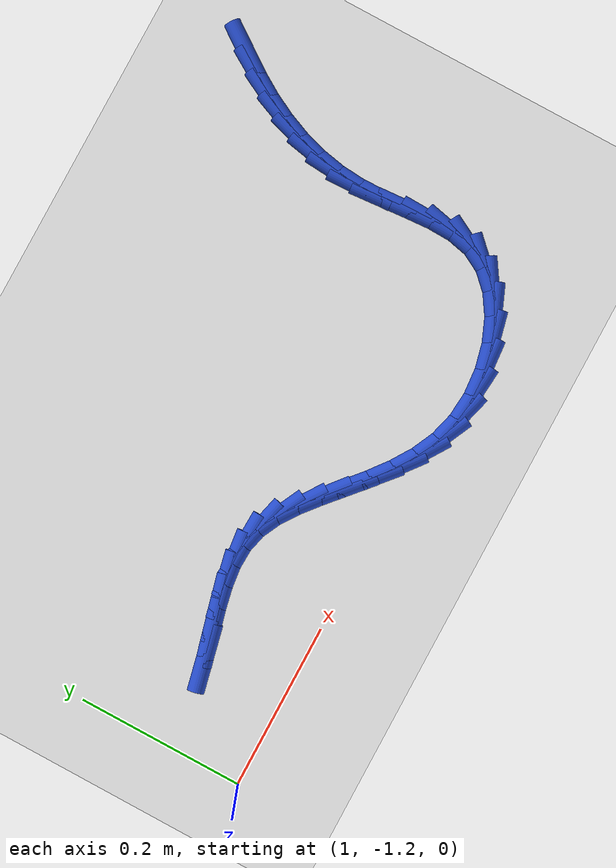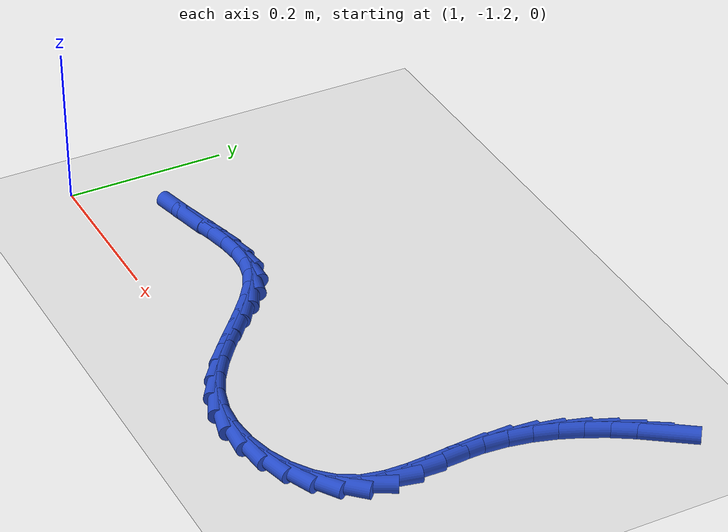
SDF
<sdf version="1.6">
 <world name="default">
  <model name="ground_plane">
   <static>1</static>
   <link name="link">
    <collision name="collision">
     <geometry><plane><normal>0 0 1</normal><size>100 100</size></plane></geometry>
     <surface><friction><ode><mu>100</mu><mu2>50</mu2></ode></friction></surface>
    </collision>
    <visual name="visual">
     <cast_shadows>0</cast_shadows>
     <geometry><plane><normal>0 0 1</normal><size>100 100</size></plane></geometry>
     <material>
      <script><uri>file://media/materials/scripts/gazebo.material</uri><name>Gazebo/WhiteGlow</name></script>
     </material>
    </visual>
   </link>
  </model>
  <model name="line">
   <link name="link_178">
    <pose>1.7388450978351795 -0.811253613014674 0.01 0 1.57 0.9492662769363623</pose>
    <collision name="collision">
     <geometry><cylinder><radius>0.01</radius><length>0.08</length></cylinder></geometry>
    </collision>
    <visual name="visual">
     <material>
      <script><name>Gazebo/Blue</name><uri>file://media/materials/scripts/gazebo.material</uri></script>
     </material>
     <geometry><cylinder><radius>0.01</radius><length>0.08</length></cylinder></geometry>
    </visual>
   </link>
   <link name="link_179">
    <pose>1.7215898680062645 -0.8353456463728262 0.01 0 1.57 1.0168966036760607</pose>
    <collision name="collision">
     <geometry><cylinder><radius>0.01</radius><length>0.08</length></cylinder></geometry>
    </collision>
    <visual name="visual">
     <material>
      <script><name>Gazebo/Blue</name><uri>file://media/materials/scripts/gazebo.material</uri></script>
     </material>
     <geometry><cylinder><radius>0.01</radius><length>0.08</length></cylinder></geometry>
    </visual>
   </link>
   <link name="link_180">
    <pose>1.706130677606069 -0.860340953222274 0.01 0 1.57 1.0935632511384987</pose>
    <collision name="collision">
     <geometry><cylinder><radius>0.01</radius><length>0.08</length></cylinder></geometry>
    </collision>
    <visual name="visual">
     <material>
      <script><name>Gazebo/Blue</name><uri>file://media/materials/scripts/gazebo.material</uri></script>
     </material>
     <geometry><cylinder><radius>0.01</radius><length>0.08</length></cylinder></geometry>
    </visual>
   </link>
   <link name="link_181">
    <pose>1.69274324322979 -0.8862304511399953 0.01 0 1.57 1.1797064117373068</pose>
    <collision name="collision">
     <geometry><cylinder><radius>0.01</radius><length>0.08</length></cylinder></geometry>
    </collision>
    <visual name="visual">
     <material>
      <script><name>Gazebo/Blue</name><uri>file://media/materials/scripts/gazebo.material</uri></script>
     </material>
     <geometry><cylinder><radius>0.01</radius><length>0.08</length></cylinder></geometry>
    </visual>
   </link>
   <link name="link_182">
    <pose>1.6817032814726256 -0.9130050577029654 0.01 0 1.57 1.2753103899206568</pose>
    <collision name="collision">
     <geometry><cylinder><radius>0.01</radius><length>0.08</length></cylinder></geometry>
    </collision>
    <visual name="visual">
     <material>
      <script><name>Gazebo/Blue</name><uri>file://media/materials/scripts/gazebo.material</uri></script>
     </material>
     <geometry><cylinder><radius>0.01</radius><length>0.08</length></cylinder></geometry>
    </visual>
   </link>
   <link name="link_183">
    <pose>1.6732865089297726 -0.9406556904881618 0.01 0 1.57 1.3796681182538157</pose>
    <collision name="collision">
     <geometry><cylinder><radius>0.01</radius><length>0.08</length></cylinder></geometry>
    </collision>
    <visual name="visual">
     <material>
      <script><name>Gazebo/Blue</name><uri>file://media/materials/scripts/gazebo.material</uri></script>
     </material>
     <geometry><cylinder><radius>0.01</radius><length>0.08</length></cylinder></geometry>
    </visual>
   </link>
   <link name="link_184">
    <pose>1.6677686421964275 -0.969173267072561 0.01 0 1.57 1.4911960448214767</pose>
    <collision name="collision">
     <geometry><cylinder><radius>0.01</radius><length>0.08</length></cylinder></geometry>
    </collision>
    <visual name="visual">
     <material>
      <script><name>Gazebo/Blue</name><uri>file://media/materials/scripts/gazebo.material</uri></script>
     </material>
     <geometry><cylinder><radius>0.01</radius><length>0.08</length></cylinder></geometry>
    </visual>
   </link>
   <link name="link_185">
    <pose>1.6654253978677882 -0.9985487050331403 0.01 0 1.57 -1.5430016155258672</pose>
    <collision name="collision">
     <geometry><cylinder><radius>0.01</radius><length>0.08</length></cylinder></geometry>
    </collision>
    <visual name="visual">
     <material>
      <script><name>Gazebo/Blue</name><uri>file://media/materials/scripts/gazebo.material</uri></script>
     </material>
     <geometry><cylinder><radius>0.01</radius><length>0.08</length></cylinder></geometry>
    </visual>
   </link>
   <link name="link_186">
    <pose>1.6662633468139851 -1.0286887249196184 0.01 0 1.57 -1.4905789773601459</pose>
    <collision name="collision">
     <geometry><cylinder><radius>0.01</radius><length>0.08</length></cylinder></geometry>
    </collision>
    <visual name="visual">
     <material>
      <script><name>Gazebo/Blue</name><uri>file://media/materials/scripts/gazebo.material</uri></script>
     </material>
     <geometry><cylinder><radius>0.01</radius><length>0.08</length></cylinder></geometry>
    </visual>
   </link>
   <link name="link_187">
    <pose>1.6687003100173476 -1.0590030376503128 0.01 0 1.57 -1.5078544698661915</pose>
    <collision name="collision">
     <geometry><cylinder><radius>0.01</radius><length>0.08</length></cylinder></geometry>
    </collision>
    <visual name="visual">
     <material>
      <script><name>Gazebo/Blue</name><uri>file://media/materials/scripts/gazebo.material</uri></script>
     </material>
     <geometry><cylinder><radius>0.01</radius><length>0.08</length></cylinder></geometry>
    </visual>
   </link>
   <link name="link_188">
    <pose>1.6705732013508447 -1.0887196286054184 0.01 0 1.57 1.5406385464244408</pose>
    <collision name="collision">
     <geometry><cylinder><radius>0.01</radius><length>0.08</length></cylinder></geometry>
    </collision>
    <visual name="visual">
     <material>
      <script><name>Gazebo/Blue</name><uri>file://media/materials/scripts/gazebo.material</uri></script>
     </material>
     <geometry><cylinder><radius>0.01</radius><length>0.08</length></cylinder></geometry>
    </visual>
   </link>
   <link name="link_189">
    <pose>1.6697180720154574 -1.1170662132949076 0.01 0 1.57 1.3548957026717814</pose>
    <collision name="collision">
     <geometry><cylinder><radius>0.01</radius><length>0.08</length></cylinder></geometry>
    </collision>
    <visual name="visual">
     <material>
      <script><name>Gazebo/Blue</name><uri>file://media/materials/scripts/gazebo.material</uri></script>
     </material>
     <geometry><cylinder><radius>0.01</radius><length>0.08</length></cylinder></geometry>
    </visual>
   </link>
   <link name="link_190">
    <pose>1.6639709732121684 -1.143270507228753 0.01 0 1.57 1.0735673804752988</pose>
    <collision name="collision">
     <geometry><cylinder><radius>0.01</radius><length>0.08</length></cylinder></geometry>
    </collision>
    <visual name="visual">
     <material>
      <script><name>Gazebo/Blue</name><uri>file://media/materials/scripts/gazebo.material</uri></script>
     </material>
     <geometry><cylinder><radius>0.01</radius><length>0.08</length></cylinder></geometry>
    </visual>
   </link>
   <link name="link_191">
    <pose>1.6513219554167344 -1.1665776531895768 0.01 0 1.57 0.7945064306805688</pose>
    <collision name="collision">
     <geometry><cylinder><radius>0.01</radius><length>0.08</length></cylinder></geometry>
    </collision>
    <visual name="visual">
     <material>
      <script><name>Gazebo/Blue</name><uri>file://media/materials/scripts/gazebo.material</uri></script>
     </material>
     <geometry><cylinder><radius>0.01</radius><length>0.08</length></cylinder></geometry>
    </visual>
   </link>
   <link name="link_192">
    <pose>1.6317955645167066 -1.1864630269029934 0.01 0 1.57 0.5732814897640252</pose>
    <collision name="collision">
     <geometry><cylinder><radius>0.01</radius><length>0.08</length></cylinder></geometry>
    </collision>
    <visual name="visual">
     <material>
      <script><name>Gazebo/Blue</name><uri>file://media/materials/scripts/gazebo.material</uri></script>
     </material>
     <geometry><cylinder><radius>0.01</radius><length>0.08</length></cylinder></geometry>
    </visual>
   </link>
   <link name="link_193">
    <pose>1.6068550602484477 -1.2025648156308857 0.01 0 1.57 0.392852844051451</pose>
    <collision name="collision">
     <geometry><cylinder><radius>0.01</radius><length>0.08</length></cylinder></geometry>
    </collision>
    <visual name="visual">
     <material>
      <script><name>Gazebo/Blue</name><uri>file://media/materials/scripts/gazebo.material</uri></script>
     </material>
     <geometry><cylinder><radius>0.01</radius><length>0.08</length></cylinder></geometry>
    </visual>
   </link>
   <link name="link_194">
    <pose>1.5779940425063017 -1.214524640068227 0.01 0 1.57 0.23404481964401755</pose>
    <collision name="collision">
     <geometry><cylinder><radius>0.01</radius><length>0.08</length></cylinder></geometry>
    </collision>
    <visual name="visual">
     <material>
      <script><name>Gazebo/Blue</name><uri>file://media/materials/scripts/gazebo.material</uri></script>
     </material>
     <geometry><cylinder><radius>0.01</radius><length>0.08</length></cylinder></geometry>
    </visual>
   </link>
   <link name="link_195">
    <pose>1.5467061111846125 -1.2219841209099886 0.01 0 1.57 0.08054101964464268</pose>
    <collision name="collision">
     <geometry><cylinder><radius>0.01</radius><length>0.08</length></cylinder></geometry>
    </collision>
    <visual name="visual">
     <material>
      <script><name>Gazebo/Blue</name><uri>file://media/materials/scripts/gazebo.material</uri></script>
     </material>
     <geometry><cylinder><radius>0.01</radius><length>0.08</length></cylinder></geometry>
    </visual>
   </link>
   <link name="link_196">
    <pose>1.514484866177724 -1.2245848788511415 0.01 0 1.57 -0.0824489587996074</pose>
    <collision name="collision">
     <geometry><cylinder><radius>0.01</radius><length>0.08</length></cylinder></geometry>
    </collision>
    <visual name="visual">
     <material>
      <script><name>Gazebo/Blue</name><uri>file://media/materials/scripts/gazebo.material</uri></script>
     </material>
     <geometry><cylinder><radius>0.01</radius><length>0.08</length></cylinder></geometry>
    </visual>
   </link>
   <link name="link_197">
    <pose>1.4828239073799796 -1.2219685345866578 0.01 0 1.57 -0.2668896376543246</pose>
    <collision name="collision">
     <geometry><cylinder><radius>0.01</radius><length>0.08</length></cylinder></geometry>
    </collision>
    <visual name="visual">
     <material>
      <script><name>Gazebo/Blue</name><uri>file://media/materials/scripts/gazebo.material</uri></script>
     </material>
     <geometry><cylinder><radius>0.01</radius><length>0.08</length></cylinder></geometry>
    </visual>
   </link>
   <link name="link_198">
    <pose>1.4531319444979498 -1.2138503836237917 0.01 0 1.57 -0.4425472797023856</pose>
    <collision name="collision">
     <geometry><cylinder><radius>0.01</radius><length>0.08</length></cylinder></geometry>
    </collision>
    <visual name="visual">
     <material>
      <script><name>Gazebo/Blue</name><uri>file://media/materials/scripts/gazebo.material</uri></script>
     </material>
     <geometry><cylinder><radius>0.01</radius><length>0.08</length></cylinder></geometry>
    </visual>
   </link>
   <link name="link_199">
    <pose>1.4257486311673562 -1.2008735378335433 0.01 0 1.57 -0.576521476525617</pose>
    <collision name="collision">
     <geometry><cylinder><radius>0.01</radius><length>0.08</length></cylinder></geometry>
    </collision>
    <visual name="visual">
     <material>
      <script><name>Gazebo/Blue</name><uri>file://media/materials/scripts/gazebo.material</uri></script>
     </material>
     <geometry><cylinder><radius>0.01</radius><length>0.08</length></cylinder></geometry>
    </visual>
   </link>
   <link name="link_200">
    <pose>1.4002827524600663 -1.1843154180177446 0.01 0 1.57 -0.6667123851349549</pose>
    <collision name="collision">
     <geometry><cylinder><radius>0.01</radius><length>0.08</length></cylinder></geometry>
    </collision>
    <visual name="visual">
     <material>
      <script><name>Gazebo/Blue</name><uri>file://media/materials/scripts/gazebo.material</uri></script>
     </material>
     <geometry><cylinder><radius>0.01</radius><length>0.08</length></cylinder></geometry>
    </visual>
   </link>
   <link name="link_201">
    <pose>1.37632892231373 -1.1654657438749592 0.01 0 1.57 -0.7153548142163231</pose>
    <collision name="collision">
     <geometry><cylinder><radius>0.01</radius><length>0.08</length></cylinder></geometry>
    </collision>
    <visual name="visual">
     <material>
      <script><name>Gazebo/Blue</name><uri>file://media/materials/scripts/gazebo.material</uri></script>
     </material>
     <geometry><cylinder><radius>0.01</radius><length>0.08</length></cylinder></geometry>
    </visual>
   </link>
   <link name="link_202">
    <pose>1.3534817546659978 -1.1456142351037513 0.01 0 1.57 -0.7235663282433927</pose>
    <collision name="collision">
     <geometry><cylinder><radius>0.01</radius><length>0.08</length></cylinder></geometry>
    </collision>
    <visual name="visual">
     <material>
      <script><name>Gazebo/Blue</name><uri>file://media/materials/scripts/gazebo.material</uri></script>
     </material>
     <geometry><cylinder><radius>0.01</radius><length>0.08</length></cylinder></geometry>
    </visual>
   </link>
   <link name="link_203">
    <pose>1.3313358634545207 -1.126050611402685 0.01 0 1.57 -0.6887034673512568</pose>
    <collision name="collision">
     <geometry><cylinder><radius>0.01</radius><length>0.08</length></cylinder></geometry>
    </collision>
    <visual name="visual">
     <material>
      <script><name>Gazebo/Blue</name><uri>file://media/materials/scripts/gazebo.material</uri></script>
     </material>
     <geometry><cylinder><radius>0.01</radius><length>0.08</length></cylinder></geometry>
    </visual>
   </link>
   <link name="link_204">
    <pose>1.3094858626169492 -1.108064592470324 0.01 0 1.57 -0.6029531329703843</pose>
    <collision name="collision">
     <geometry><cylinder><radius>0.01</radius><length>0.08</length></cylinder></geometry>
    </collision>
    <visual name="visual">
     <material>
      <script><name>Gazebo/Blue</name><uri>file://media/materials/scripts/gazebo.material</uri></script>
     </material>
     <geometry><cylinder><radius>0.01</radius><length>0.08</length></cylinder></geometry>
    </visual>
   </link>
   <link name="link_205">
    <pose>1.2875263660909337 -1.0929458980052325 0.01 0 1.57 -0.4537914862372568</pose>
    <collision name="collision">
     <geometry><cylinder><radius>0.01</radius><length>0.08</length></cylinder></geometry>
    </collision>
    <visual name="visual">
     <material>
      <script><name>Gazebo/Blue</name><uri>file://media/materials/scripts/gazebo.material</uri></script>
     </material>
     <geometry><cylinder><radius>0.01</radius><length>0.08</length></cylinder></geometry>
    </visual>
   </link>
   <link name="link_206">
    <pose>1.2650519878141253 -1.0819842477059745 0.01 0 1.57 -0.2390300237577008</pose>
    <collision name="collision">
     <geometry><cylinder><radius>0.01</radius><length>0.08</length></cylinder></geometry>
    </collision>
    <visual name="visual">
     <material>
      <script><name>Gazebo/Blue</name><uri>file://media/materials/scripts/gazebo.material</uri></script>
     </material>
     <geometry><cylinder><radius>0.01</radius><length>0.08</length></cylinder></geometry>
    </visual>
   </link>
   <link name="link_207">
    <pose>1.241686967484802 -1.076290452027072 0.01 0 1.57 -0.03306965589705636</pose>
    <collision name="collision">
     <geometry><cylinder><radius>0.01</radius><length>0.08</length></cylinder></geometry>
    </collision>
    <visual name="visual">
     <material>
      <script><name>Gazebo/Blue</name><uri>file://media/materials/scripts/gazebo.material</uri></script>
     </material>
     <geometry><cylinder><radius>0.01</radius><length>0.08</length></cylinder></geometry>
    </visual>
   </link>
   <link name="link_208">
    <pose>1.217302531788526 -1.0754837730459572 0.01 0 1.57 0.1159155311067321</pose>
    <collision name="collision">
     <geometry><cylinder><radius>0.01</radius><length>0.08</length></cylinder></geometry>
    </collision>
    <visual name="visual">
     <material>
      <script><name>Gazebo/Blue</name><uri>file://media/materials/scripts/gazebo.material</uri></script>
     </material>
     <geometry><cylinder><radius>0.01</radius><length>0.08</length></cylinder></geometry>
    </visual>
   </link>
   <link name="link_209">
    <pose>1.1918926157580854 -1.0784424401315484 0.01 0 1.57 0.20859845331296506</pose>
    <collision name="collision">
     <geometry><cylinder><radius>0.01</radius><length>0.08</length></cylinder></geometry>
    </collision>
    <visual name="visual">
     <material>
      <script><name>Gazebo/Blue</name><uri>file://media/materials/scripts/gazebo.material</uri></script>
     </material>
     <geometry><cylinder><radius>0.01</radius><length>0.08</length></cylinder></geometry>
    </visual>
   </link>
   <link name="link_210">
    <pose>1.1654520426242816 -1.0840393188466597 0.01 0 1.57 0.2531434877606406</pose>
    <collision name="collision">
     <geometry><cylinder><radius>0.01</radius><length>0.08</length></cylinder></geometry>
    </collision>
    <visual name="visual">
     <material>
      <script><name>Gazebo/Blue</name><uri>file://media/materials/scripts/gazebo.material</uri></script>
     </material>
     <geometry><cylinder><radius>0.01</radius><length>0.08</length></cylinder></geometry>
    </visual>
   </link>
   <link name="link_211">
    <pose>1.137975635617919 -1.091147274754106 0.01 0 1.57 0.25690766522213826</pose>
    <collision name="collision">
     <geometry><cylinder><radius>0.01</radius><length>0.08</length></cylinder></geometry>
    </collision>
    <visual name="visual">
     <material>
      <script><name>Gazebo/Blue</name><uri>file://media/materials/scripts/gazebo.material</uri></script>
     </material>
     <geometry><cylinder><radius>0.01</radius><length>0.08</length></cylinder></geometry>
    </visual>
   </link>
   <link name="link_212">
    <pose>1.1094582179697987 -1.0986391734167005 0.01 0 1.57 0.22443185205311436</pose>
    <collision name="collision">
     <geometry><cylinder><radius>0.01</radius><length>0.08</length></cylinder></geometry>
    </collision>
    <visual name="visual">
     <material>
      <script><name>Gazebo/Blue</name><uri>file://media/materials/scripts/gazebo.material</uri></script>
     </material>
     <geometry><cylinder><radius>0.01</radius><length>0.08</length></cylinder></geometry>
    </visual>
   </link>
  </model>
 </world>
</sdf>
